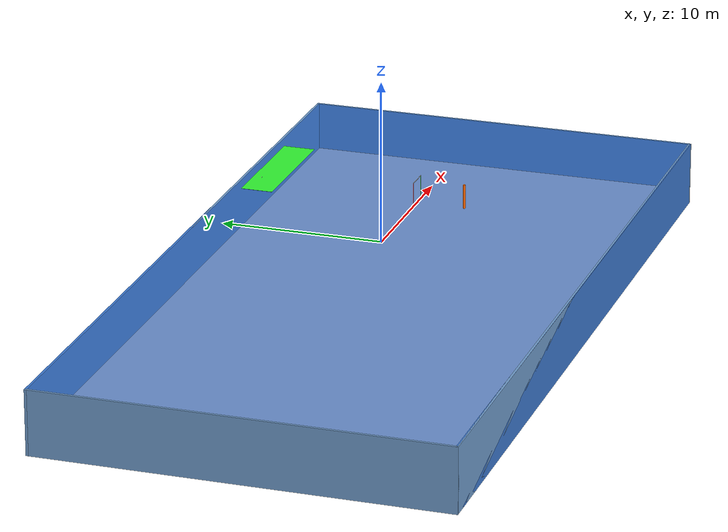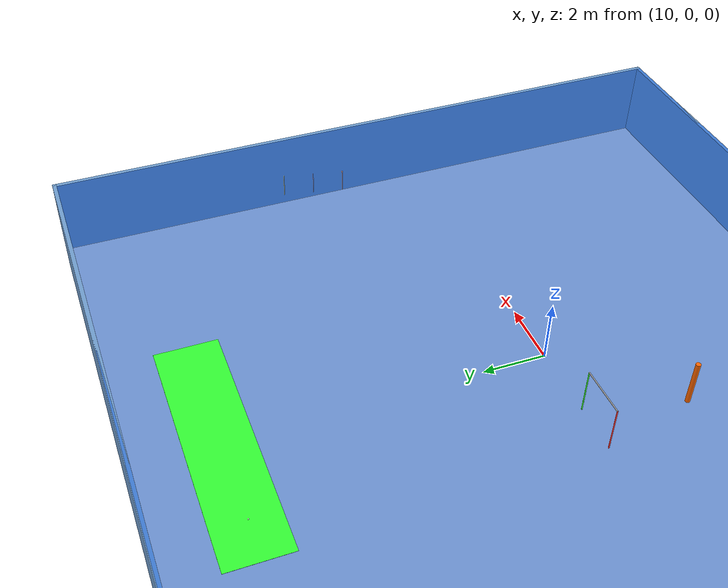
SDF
<sdf version="1.9">
 <world name="sauvc_world">
  <scene>
   <ambient>0.01 0.01 0.01 1.0</ambient>
   <sky><clouds><speed>12</speed></clouds></sky>
   <shadows>1</shadows>
  </scene>
  <physics name="1ms" type="dart">
   <max_step_size>0.001</max_step_size>
   <real_time_factor>1.0</real_time_factor>
  </physics>
  <plugin filename="gz-sim-physics-system" name="gz::sim::systems::Physics"/>
  <plugin filename="gz-sim-user-commands-system" name="gz::sim::systems::UserCommands"/>
  <plugin filename="gz-sim-scene-broadcaster-system" name="gz::sim::systems::SceneBroadcaster"/>
  <plugin filename="gz-sim-contact-system" name="gz::sim::systems::Contact"/>
  <plugin filename="gz-sim-sensors-system" name="gz::sim::systems::Sensors">
   <render_engine>ogre2</render_engine>
  </plugin>
  <plugin filename="gz-sim-imu-system" name="gz::sim::systems::Imu"/>
  <plugin filename="gz-sim-magnetometer-system" name="gz::sim::systems::Magnetometer"/>
  <light type="directional" name="sun1">
   <pose>50 0 150 0 0 0</pose>
   <diffuse>1 1 1 1</diffuse>
   <specular>.1 .1 .1 1</specular>
   <direction>0.3 0.3 -1</direction>
   <cast_shadows>false</cast_shadows>
  </light>
  <light type="directional" name="sun_diffuse">
   <pose>-50 0 -150 0 0 0</pose>
   <diffuse>0.6 0.6 0.6 1</diffuse>
   <specular>0 0 0 1</specular>
   <direction>-0.3 -0.3 -1</direction>
   <cast_shadows>false</cast_shadows>
  </light>
  <light type="directional" name="sun_diffuse_1">
   <pose>-100 500 -20 0 0 0</pose>
   <diffuse>0.8 0.8 0.8 1</diffuse>
   <specular>1 1 1 1</specular>
   <direction>-1 -1 0</direction>
   <cast_shadows>false</cast_shadows>
  </light>
  <light type="directional" name="sun_diffuse_2">
   <pose>-150 -130 50 0 0 0</pose>
   <diffuse>0.6 0.6 0.6 1</diffuse>
   <specular>0.2 0.2 0.2 1</specular>
   <direction>0.5 0.5 -1</direction>
   <cast_shadows>false</cast_shadows>
  </light>
  <include><uri>model://pool_ground</uri><pose>0 0 -4 0 0 0</pose></include>
  <include><uri>model://wall</uri><pose>0 0 -4 0 0 0</pose></include>
  <include><uri>model://gate</uri><pose>7 0 0 0 0 0</pose></include>
  <include><uri>model://green_mat</uri><pose>10 10 0 0 0 0</pose></include>
  <include><uri>model://orange_flare</uri><pose>7 -3 0 0 0 0</pose></include>
  <include><uri>model://yellow_flare</uri><pose>20 5 0.2 0 0 0</pose></include>
  <include><uri>model://blue_flare</uri><pose>19.8 4 0.2 0 0 0</pose></include>
  <include><uri>model://red_flare</uri><pose>19.6 3 0.2 0 0 0</pose></include>
  <include><uri>model://golf_ball</uri><pose>7 10 0.2 0 0 0</pose></include>
  <plugin filename="gz-sim-buoyancy-system" name="gz::sim::systems::Buoyancy">
   <graded_buoyancy>
    <default_density>1025</default_density>
    <density_change><above_depth>0</above_depth><density>1</density></density_change>
   </graded_buoyancy>
  </plugin>
 </world>
</sdf>

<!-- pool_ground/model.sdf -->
<sdf version="1.7">
  <model name="pool_ground">
    <static>true</static>

    <link name="link">
      <collision name="collision">
        <geometry>
          <plane>
            <normal>0 0 1</normal>
            <size>50 25</size>
          </plane>
        </geometry>
      </collision>
      <visual name="visual">
        <cast_shadows>false</cast_shadows>
        <geometry>
          <plane>
            <normal>0 0 1</normal>
            <size>50 25</size>
          </plane>
        </geometry>
      </visual>
    </link>

    <link name='water_visual'>
      <pose>0 0 1.0 0 0 0</pose> <visual name='water_surface'>
        <cast_shadows>false</cast_shadows>
        <geometry>
          <box>
            <size>49.85 25.15 4</size>
          </box>
        </geometry>
        <material>
          <ambient>0.1 0.3 0.8 0.5</ambient>
          <diffuse>0.1 0.4 0.9 0.5</diffuse>
        </material>
      </visual>
    </link>
  </model>
</sdf>

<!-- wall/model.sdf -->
<sdf version='1.7'>
  <model name='wall'>
    <static>true</static>
    <link name='Wall_0'>
      <pose>0 12.5 0 0 0 0</pose>
      <collision name='Wall_0_Collision'>
        <geometry>
          <box><size>50.15 0.15 4</size></box>
        </geometry>
        <pose>0 0 1 0 0 0</pose>
      </collision>
      <visual name='Wall_0_Visual'>
        <pose>0 0 1 0 0 0</pose>
        <geometry>
          <box><size>50.15 0.15 4</size></box>
        </geometry>
        <material>
          <ambient>0.44 0.62 0.81 1</ambient>
          <diffuse>0.44 0.62 0.81 1</diffuse>
          <specular>0.1 0.1 0.1 1</specular>
        </material>
      </visual>
    </link>
    <link name='Wall_2'>
      <collision name='Wall_2_Collision'>
        <geometry>
          <box><size>25.15 0.15 4</size></box>
        </geometry>
        <pose>0 0 1 0 0 0</pose>
      </collision>
      <visual name='Wall_2_Visual'>
        <pose>0 0 1 0 0 0</pose>
        <geometry>
          <box><size>25.15 0.15 4</size></box>
        </geometry>
        <material>
          <ambient>0.44 0.62 0.81 1</ambient>
          <diffuse>0.44 0.62 0.81 1</diffuse>
          <specular>0.1 0.1 0.1 1</specular>
        </material>
      </visual>
      <pose>-25 0 0 0 0 -1.5708</pose>
    </link>
    <link name='Wall_4'>
      <collision name='Wall_4_Collision'>
        <geometry>
          <box><size>25.15 0.15 4</size></box>
        </geometry>
        <pose>0 0 1 0 0 0</pose>
      </collision>
      <visual name='Wall_4_Visual'>
        <pose>0 0 1 0 0 0</pose>
        <geometry>
          <box><size>25.15 0.15 4</size></box>
        </geometry>
        <material>
          <ambient>0.44 0.62 0.81 1</ambient>
          <diffuse>0.44 0.62 0.81 1</diffuse>
          <specular >0.1 0.1 0.1 1</specular>
        </material>
      </visual>
      <pose>25 0 0 0 0 1.5708</pose>
    </link>
    <link name='Wall_6'>
      <collision name='Wall_6_Collision'>
        <geometry>
          <box><size>50.15 0.15 4</size></box>
        </geometry>
        <pose>0 0 1 0 0 0</pose>
      </collision>
      <visual name='Wall_6_Visual'>
        <pose>0 0 1 0 0 0</pose>
        <geometry>
          <box><size>50.15 0.15 4</size></box>
        </geometry>
        <material>
          <ambient>0.44 0.62 0.81 1</ambient>
          <diffuse>0.44 0.62 0.81 1</diffuse>
          <specular>0.1 0.1 0.1 1</specular>
        </material>
      </visual>
      <pose>0 -12.5 0 0 0 0</pose>
    </link>
  </model>
</sdf>

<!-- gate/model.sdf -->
<sdf version='1.7'>
  <model name='gate'>
    <static>true</static>

    <link name='left_post'>
      <pose>-0.75 0 0.75 0 0 0</pose>
      <visual name='post_visual'>
        <geometry>
          <cylinder>
            <radius>0.02</radius>
            <length>1.5</length>
          </cylinder>
        </geometry>
        <material>
          <ambient>0.8 0.1 0.1 1</ambient>
          <diffuse>1.0 0.2 0.2 1</diffuse>
          <specular>0.1 0.1 0.1 1</specular>
        </material>
      </visual>
      <collision name='post_collision'>
        <geometry>
          <cylinder>
            <radius>0.02</radius>
            <length>1.5</length>
          </cylinder>
        </geometry>
      </collision>
    </link>

    <link name='right_post'>
      <pose>0.75 0 0.75 0 0 0</pose>
      <visual name='post_visual'>
        <geometry>
          <cylinder>
            <radius>0.02</radius>
            <length>1.5</length>
          </cylinder>
        </geometry>
        <material>
          <ambient>0.1 0.8 0.1 1</ambient>
          <diffuse>0.2 1.0 0.2 1</diffuse>
          <specular>0.1 0.1 0.1 1</specular>
        </material>
      </visual>
      <collision name='post_collision'>
        <geometry>
          <cylinder>
            <radius>0.02</radius>
            <length>1.5</length>
          </cylinder>
        </geometry>
      </collision>
    </link>

    <link name='top_bar'>
      <pose>0 0 1.5 0 1.5707 0</pose>
      <visual name='bar_visual'>
        <geometry>
          <cylinder>
            <radius>0.02</radius>
            <length>1.5</length>
          </cylinder>
        </geometry>
        <material>
          <ambient>0.3 0.3 0.3 1</ambient>
          <diffuse>0.7 0.7 0.7 1</diffuse>
          <specular>0.1 0.1 0.1 1</specular>
        </material>
      </visual>
      <collision name='bar_collision'>
        <geometry>
          <cylinder>
            <radius>0.02</radius>
            <length>1.5</length>
          </cylinder>
        </geometry>
      </collision>
    </link>

    <joint name='left_post_joint' type='fixed'>
      <parent>top_bar</parent>
      <child>left_post</child>
    </joint>

    <joint name='right_post_joint' type='fixed'>
      <parent>top_bar</parent>
      <child>right_post</child>
    </joint>

  </model>
</sdf>

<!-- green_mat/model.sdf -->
<sdf version='1.7'>
  <model name='green_mat'>
    <static>true</static>
    <link name='link'>
      <visual name='visual'>
        <geometry>
          <box>
            <size>8 2 0.01</size>
          </box>
        </geometry>
        <material>
          <ambient>0.1 0.5 0.1 1</ambient>
          <diffuse>0.2 1.0 0.2 1</diffuse>
          <specular>0.1 0.1 0.1 1</specular>
        </material>
      </visual>
      <collision name='collision'>
        <geometry>
          <box>
            <size>8 2 0.01</size>
          </box>
        </geometry>
      </collision>
    </link>
  </model>
</sdf>

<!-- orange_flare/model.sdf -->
<sdf version='1.7'>
  <model name='orange_flare'>
    <static>true</static>
    <link name='link'>
      <pose>0 0 0.75 0 0 0</pose>
      <visual name='visual'>
        <geometry>
          <cylinder>
            <radius>0.075</radius>
            <length>1.5</length>
          </cylinder>
        </geometry>
        <material>
          <ambient>1.0 0.4 0.0 1</ambient>
          <diffuse>1.0 0.4 0.0 1</diffuse>
          <specular>0.1 0.1 0.1 1</specular>
        </material>
      </visual>
      <collision name='collision'>
        <geometry>
          <cylinder>
            <radius>0.075</radius>
            <length>1.5</length>
          </cylinder>
        </geometry>
      </collision>
    </link>
  </model>
</sdf>

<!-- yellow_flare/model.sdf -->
<sdf version='1.7'>
  <model name='yellow_flare'>
    <static>false</static>
    <link name='link'>
      <pose>0 0 0.4 0 0 0</pose>

      <inertial>
        <mass>1</mass>
        <inertia>
          <ixx>0.145833</ixx>
          <ixy>0</ixy>
          <ixz>0</ixz>
          <iyy>0.145833</iyy>
          <iyz>0</iyz>
          <izz>0.125</izz>
        </inertia>
      </inertial>

      <visual name='visual'>
        <geometry>
          <cylinder>
            <radius>0.01</radius>
            <length>0.8</length>
          </cylinder>
        </geometry>
        <material>
          <ambient>1.0 1.0 0.3 1</ambient>
          <diffuse>1.0 1.0 0.7 1</diffuse>
          <specular>0.1 0.1 0.1 1</specular>
        </material>
      </visual>

      <collision name='collision'>
        <geometry>
          <cylinder>
            <radius>0.01</radius>
            <length>0.8</length>
          </cylinder>
        </geometry>
      </collision>
    </link>
  </model>
</sdf>

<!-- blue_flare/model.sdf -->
<sdf version='1.7'>
  <model name='blue_flare'>
    <static>false</static>
    <link name='link'>
      <pose>0 0 0.4 0 0 0</pose>

      <inertial>
        <mass>1</mass>
        <inertia>
          <ixx>0.145833</ixx>
          <ixy>0</ixy>
          <ixz>0</ixz>
          <iyy>0.145833</iyy>
          <iyz>0</iyz>
          <izz>0.125</izz>
        </inertia>
      </inertial>

      <visual name='visual'>
        <geometry>
          <cylinder>
            <radius>0.01</radius>
            <length>0.8</length>
          </cylinder>
        </geometry>
        <material>
          <ambient>0.3 0.3 1.0 1</ambient>
          <diffuse>0.7 0.7 1.0 1</diffuse>
          <specular>0.1 0.1 0.1 1</specular>
        </material>
      </visual>

      <collision name='collision'>
        <geometry>
          <cylinder>
            <radius>0.01</radius>
            <length>0.8</length>
          </cylinder>
        </geometry>
      </collision>
    </link>
  </model>
</sdf>

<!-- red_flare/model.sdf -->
<sdf version='1.7'>
  <model name='red_flare'>
    <static>false</static>
    <link name='link'>
      <pose>0 0 0.4 0 0 0</pose>

      <inertial>
        <mass>1</mass>
        <inertia>
          <ixx>0.145833</ixx>
          <ixy>0</ixy>
          <ixz>0</ixz>
          <iyy>0.145833</iyy>
          <iyz>0</iyz>
          <izz>0.125</izz>
        </inertia>
      </inertial>

      <visual name='visual'>
        <geometry>
          <cylinder>
            <radius>0.01</radius>
            <length>0.8</length>
          </cylinder>
        </geometry>
        <material>
          <ambient>1.0 0.3 0.3 1</ambient>
          <diffuse>1.0 0.7 0.7 1</diffuse>
          <specular>0.1 0.1 0.1 1</specular>
        </material>
      </visual>

      <collision name='collision'>
        <geometry>
          <cylinder>
            <radius>0.01</radius>
            <length>0.8</length>
          </cylinder>
        </geometry>
      </collision>
    </link>
  </model>
</sdf>

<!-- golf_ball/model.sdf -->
<sdf version='1.7'>
  <model name='golf_ball'>
    <static>false</static>
    <link name='link'>
      <pose>0 0 0.3 0 0 0</pose>

      <inertial>
        <mass>0.046</mass>
        <inertia>
          <ixx>8.4e-06</ixx>
          <ixy>0</ixy>
          <ixz>0</ixz>
          <iyy>8.4e-06</iyy>
          <iyz>0</iyz>
          <izz>8.4e-06</izz>
        </inertia>
      </inertial>

      <visual name='visual'>
        <geometry>
          <sphere>
            <radius>0.02135</radius>
          </sphere>
        </geometry>
        <material>
          <ambient>1 1 1 1</ambient>
          <diffuse>1 1 1 1</diffuse>
          <specular>0.2 0.2 0.2 1</specular>
        </material>
      </visual>

      <collision name='collision'>
        <geometry>
          <sphere>
            <radius>0.02135</radius>
          </sphere>
        </geometry>
      </collision>
    </link>
  </model>
</sdf>
